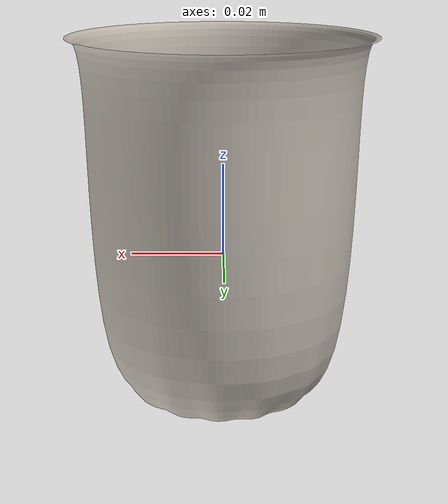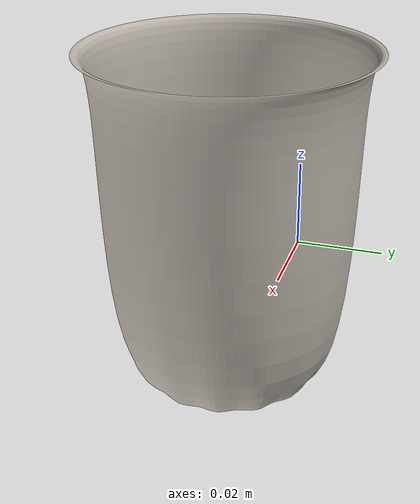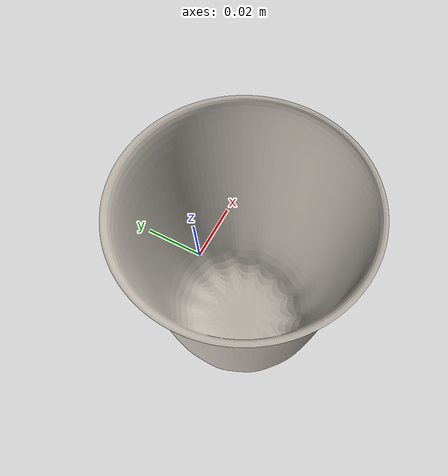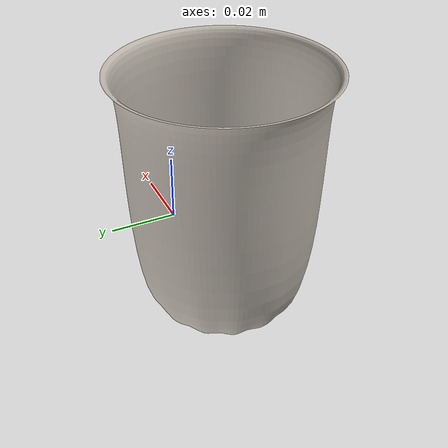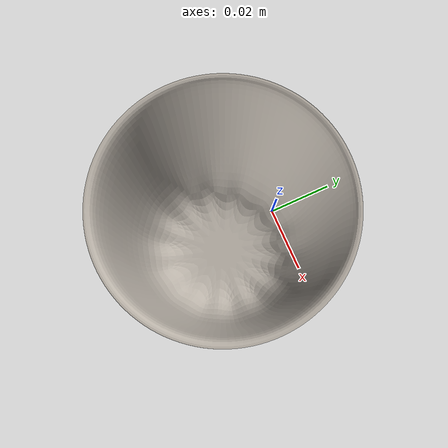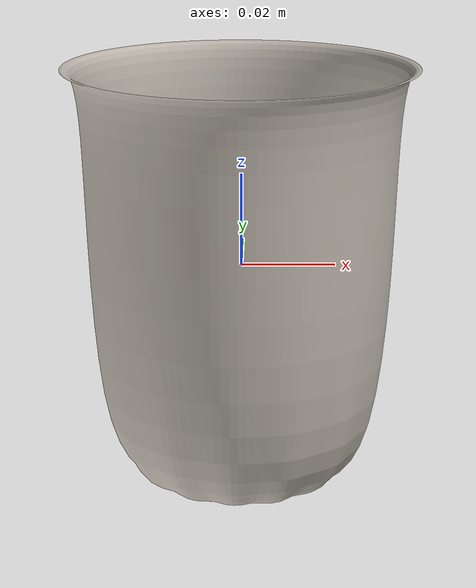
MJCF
<mujoco model="mug_11">
  <asset>
    <mesh file="visual/model_normalized_0.obj" name="model_normalized_0_vis" scale="0.105 0.105 0.105" refquat="0.7071067811865475 0.0 0.0 0.7071067811865476"/>
    <texture type="2d" name="image0" file="visual/image0.png"/>
    <material name="Material.314" texture="image0" specular="0.1" shininess="0.2" emission="0.15"/>
    <mesh file="collision/collision_mesh_collision_0.obj" name="mug_collision_mesh_0" scale="0.105 0.105 0.105" refquat="0.7071067811865475 0.0 0.0 0.7071067811865476"/>
    <mesh file="collision/collision_mesh_collision_1.obj" name="mug_collision_mesh_1" scale="0.105 0.105 0.105" refquat="0.7071067811865475 0.0 0.0 0.7071067811865476"/>
    <mesh file="collision/collision_mesh_collision_2.obj" name="mug_collision_mesh_2" scale="0.105 0.105 0.105" refquat="0.7071067811865475 0.0 0.0 0.7071067811865476"/>
    <mesh file="collision/collision_mesh_collision_3.obj" name="mug_collision_mesh_3" scale="0.105 0.105 0.105" refquat="0.7071067811865475 0.0 0.0 0.7071067811865476"/>
    <mesh file="collision/collision_mesh_collision_4.obj" name="mug_collision_mesh_4" scale="0.105 0.105 0.105" refquat="0.7071067811865475 0.0 0.0 0.7071067811865476"/>
    <mesh file="collision/collision_mesh_collision_5.obj" name="mug_collision_mesh_5" scale="0.105 0.105 0.105" refquat="0.7071067811865475 0.0 0.0 0.7071067811865476"/>
    <mesh file="collision/collision_mesh_collision_6.obj" name="mug_collision_mesh_6" scale="0.105 0.105 0.105" refquat="0.7071067811865475 0.0 0.0 0.7071067811865476"/>
    <mesh file="collision/collision_mesh_collision_7.obj" name="mug_collision_mesh_7" scale="0.105 0.105 0.105" refquat="0.7071067811865475 0.0 0.0 0.7071067811865476"/>
    <mesh file="collision/collision_mesh_collision_8.obj" name="mug_collision_mesh_8" scale="0.105 0.105 0.105" refquat="0.7071067811865475 0.0 0.0 0.7071067811865476"/>
    <mesh file="collision/collision_mesh_collision_9.obj" name="mug_collision_mesh_9" scale="0.105 0.105 0.105" refquat="0.7071067811865475 0.0 0.0 0.7071067811865476"/>
    <mesh file="collision/collision_mesh_collision_10.obj" name="mug_collision_mesh_10" scale="0.105 0.105 0.105" refquat="0.7071067811865475 0.0 0.0 0.7071067811865476"/>
    <mesh file="collision/collision_mesh_collision_11.obj" name="mug_collision_mesh_11" scale="0.105 0.105 0.105" refquat="0.7071067811865475 0.0 0.0 0.7071067811865476"/>
    <mesh file="collision/collision_mesh_collision_12.obj" name="mug_collision_mesh_12" scale="0.105 0.105 0.105" refquat="0.7071067811865475 0.0 0.0 0.7071067811865476"/>
    <mesh file="collision/collision_mesh_collision_13.obj" name="mug_collision_mesh_13" scale="0.105 0.105 0.105" refquat="0.7071067811865475 0.0 0.0 0.7071067811865476"/>
    <mesh file="collision/collision_mesh_collision_14.obj" name="mug_collision_mesh_14" scale="0.105 0.105 0.105" refquat="0.7071067811865475 0.0 0.0 0.7071067811865476"/>
    <mesh file="collision/collision_mesh_collision_15.obj" name="mug_collision_mesh_15" scale="0.105 0.105 0.105" refquat="0.7071067811865475 0.0 0.0 0.7071067811865476"/>
  </asset>
  <default>
    <default class="region">
      <geom group="1" conaffinity="0" contype="0" rgba="0 1 0 0" density="0"/>
    </default>
    <default class="collision">
      <geom group="3" rgba="0.5 0 0 0.5" density="0"/>
    </default>
  </default>
  <worldbody>
    <body>
      <body name="object">
        <geom density="0" friction="1.2 0.05 0.001" type="mesh" mesh="model_normalized_0_vis" conaffinity="0" contype="0" group="1" material="Material.314" mass="0.3"/>
        <geom class="region" name="reg_bbox" type="box" pos="5.554500000019836e-07 0.0 1.2421499999989982e-06" size="0.03846722354999999 0.0525 0.04468792125" density="0"/>        <geom mesh="mug_collision_mesh_0" type="mesh" class="collision" density="0"/>
        <geom mesh="mug_collision_mesh_1" type="mesh" class="collision" density="0"/>
        <geom mesh="mug_collision_mesh_2" type="mesh" class="collision" density="0"/>
        <geom mesh="mug_collision_mesh_3" type="mesh" class="collision" density="0"/>
        <geom mesh="mug_collision_mesh_4" type="mesh" class="collision" density="0"/>
        <geom mesh="mug_collision_mesh_5" type="mesh" class="collision" density="0"/>
        <geom mesh="mug_collision_mesh_6" type="mesh" class="collision" density="0"/>
        <geom mesh="mug_collision_mesh_7" type="mesh" class="collision" density="0"/>
        <geom mesh="mug_collision_mesh_8" type="mesh" class="collision" density="0"/>
        <geom mesh="mug_collision_mesh_9" type="mesh" class="collision" density="0"/>
        <geom mesh="mug_collision_mesh_10" type="mesh" class="collision" density="0"/>
        <geom mesh="mug_collision_mesh_11" type="mesh" class="collision" density="0"/>
        <geom mesh="mug_collision_mesh_12" type="mesh" class="collision" density="0"/>
        <geom mesh="mug_collision_mesh_13" type="mesh" class="collision" density="0"/>
        <geom mesh="mug_collision_mesh_14" type="mesh" class="collision" density="0"/>
        <geom mesh="mug_collision_mesh_15" type="mesh" class="collision" density="0"/>
        <geom rgba="0 0 0 0" size="0.036 0.035" pos="0 0.015 0.0" type="cylinder" name="liquid" class="region" density="0"/>        <geom rgba="0 0 0 0 " size="0.033 0.037" pos="0 0.014 0.006" type="cylinder" name="reg_int" class="region" density="0"/>      </body>
    </body>
  </worldbody>
</mujoco>
